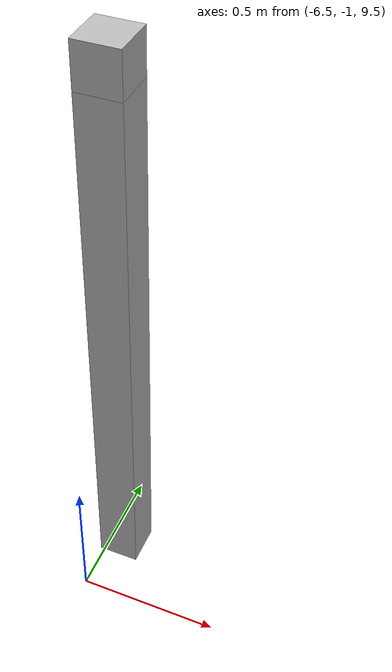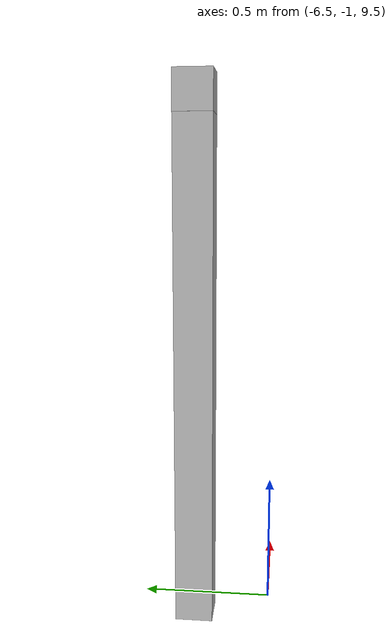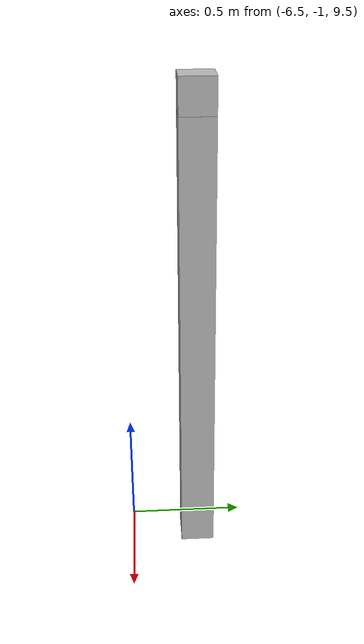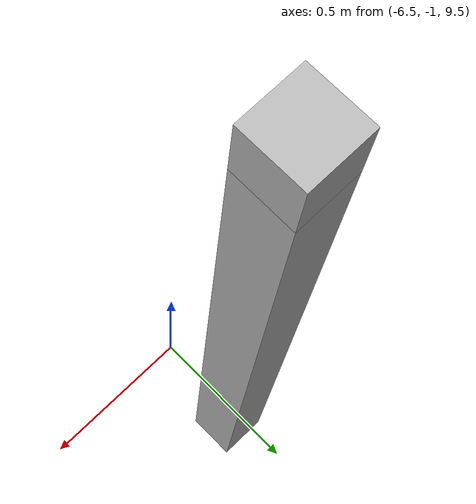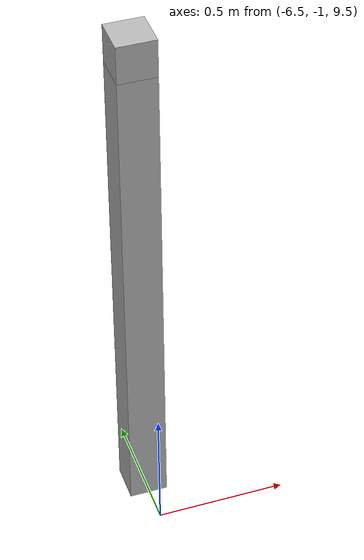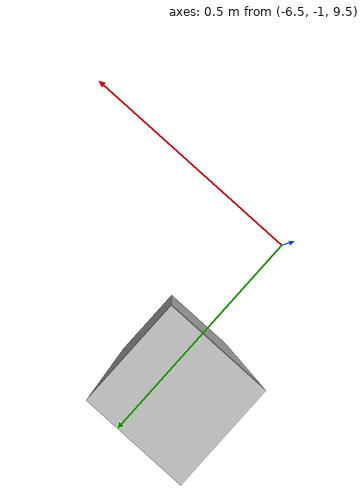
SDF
<sdf version="1.7">
 <world name="default">
  <model name="orthogonal_747_2.000.15_TS">
   <static>1</static>
   <link name="u_link_6_2_0">
    <inertial>
     <mass>1</mass>
     <inertia>
      <ixx>0.166667</ixx>
      <ixy>0</ixy>
      <ixz>0</ixz>
      <iyy>0.166667</iyy>
      <iyz>0</iyz>
      <izz>0.166667</izz>
     </inertia>
    </inertial>
    <pose>0 4.3 13.975 0 -0 0</pose>
    <visual name="visual_0">
     <laser_retro>5713</laser_retro>
     <geometry><box><size>0.15 1e-06 0.15</size></box></geometry>
     <material>
      <script><name>Gazebo/Grey</name><uri>file://media/materials/scripts/gazebo.material</uri></script>
      <shader type="pixel"><normal_map>__default__</normal_map></shader>
      <ambient>0.678 0.498 0.659 1</ambient>
      <diffuse>0.7 0.7 0.7 1</diffuse>
      <specular>0.01 0.01 0.01 1</specular>
      <emissive>0 0 0 1</emissive>
     </material>
     <pose>0 -0.075 0 0 -0 0</pose>
     <transparency>1</transparency>
    </visual>
    <visual name="visual_1">
     <laser_retro>5714</laser_retro>
     <geometry><box><size>0.15 1e-06 0.15</size></box></geometry>
     <material>
      <script><name>Gazebo/Grey</name><uri>file://media/materials/scripts/gazebo.material</uri></script>
      <shader type="pixel"><normal_map>__default__</normal_map></shader>
      <ambient>0.447 0.624 0.812 1</ambient>
      <diffuse>0.7 0.7 0.7 1</diffuse>
      <specular>0.01 0.01 0.01 1</specular>
      <emissive>0 0 0 1</emissive>
     </material>
     <pose>0 0.075 0 0 -0 0</pose>
     <transparency>1</transparency>
    </visual>
    <visual name="visual_2">
     <laser_retro>5715</laser_retro>
     <geometry><box><size>0.15 0.15 1e-06</size></box></geometry>
     <material>
      <script><name>Gazebo/Grey</name><uri>file://media/materials/scripts/gazebo.material</uri></script>
      <shader type="pixel"><normal_map>__default__</normal_map></shader>
      <ambient>0.988 0.686 0.243 1</ambient>
      <diffuse>0.7 0.7 0.7 1</diffuse>
      <specular>0.01 0.01 0.01 1</specular>
      <emissive>0 0 0 1</emissive>
     </material>
     <pose>0 0 -0.075 0 -0 0</pose>
     <transparency>1</transparency>
    </visual>
    <visual name="visual_3">
     <laser_retro>5716</laser_retro>
     <geometry><box><size>1e-06 0.15 0.15</size></box></geometry>
     <material>
      <script><name>Gazebo/Grey</name><uri>file://media/materials/scripts/gazebo.material</uri></script>
      <shader type="pixel"><normal_map>__default__</normal_map></shader>
      <ambient>0.988 0.914 0.31 1</ambient>
      <diffuse>0.7 0.7 0.7 1</diffuse>
      <specular>0.01 0.01 0.01 1</specular>
      <emissive>0 0 0 1</emissive>
     </material>
     <pose>0.075 0 0 0 -0 0</pose>
     <transparency>1</transparency>
    </visual>
    <visual name="visual_4">
     <laser_retro>5717</laser_retro>
     <geometry><box><size>0.15 0.15 1e-06</size></box></geometry>
     <material>
      <script><name>Gazebo/Grey</name><uri>file://media/materials/scripts/gazebo.material</uri></script>
      <shader type="pixel"><normal_map>__default__</normal_map></shader>
      <ambient>0.937 0.161 0.161 1</ambient>
      <diffuse>0.7 0.7 0.7 1</diffuse>
      <specular>0.01 0.01 0.01 1</specular>
      <emissive>0 0 0 1</emissive>
     </material>
     <pose>0 0 0.075 0 -0 0</pose>
     <transparency>1</transparency>
    </visual>
    <visual name="visual_5">
     <laser_retro>5718</laser_retro>
     <geometry><box><size>1e-06 0.15 0.15</size></box></geometry>
     <material>
      <script><name>Gazebo/Grey</name><uri>file://media/materials/scripts/gazebo.material</uri></script>
      <shader type="pixel"><normal_map>__default__</normal_map></shader>
      <ambient>0.541 0.886 0.204 1</ambient>
      <diffuse>0.7 0.7 0.7 1</diffuse>
      <specular>0.01 0.01 0.01 1</specular>
      <emissive>0 0 0 1</emissive>
     </material>
     <pose>-0.075 0 0 0 -0 0</pose>
     <transparency>1</transparency>
    </visual>
    <visual name="visual_texture">
     <geometry><box><size>0.149985 0.149985 0.149985</size></box></geometry>
     <material>
      <script>
       <uri>model://BASE_MODELS/simple_block_v2_textured/materials/scripts</uri>
       <uri>model://BASE_MODELS/simple_block_v2_textured/materials/textures</uri>
       <name>metal</name>
      </script>
     </material>
     <laser_retro>5719</laser_retro>
    </visual>
    <collision name="collision">
     <geometry><box><size>0.15 0.15 0.15</size></box></geometry>
     <surface>
      <friction>
       <ode><mu>1</mu><mu2>1</mu2><fdir1>0 0 0</fdir1><slip1>0</slip1><slip2>0</slip2></ode>
       <torsional>
        <coefficient>1</coefficient>
        <patch_radius>0</patch_radius>
        <surface_radius>0</surface_radius>
        <use_patch_radius>1</use_patch_radius>
        <ode><slip>0</slip></ode>
       </torsional>
      </friction>
      <bounce><restitution_coefficient>0</restitution_coefficient><threshold>1e+06</threshold></bounce>
      <contact>
       <collide_without_contact>0</collide_without_contact>
       <collide_without_contact_bitmask>1</collide_without_contact_bitmask>
       <collide_bitmask>1</collide_bitmask>
       <ode>
        <soft_cfm>0</soft_cfm>
        <soft_erp>0.2</soft_erp>
        <kp>1e+13</kp>
        <kd>1</kd>
        <max_vel>0.01</max_vel>
        <min_depth>0</min_depth>
       </ode>
       <bullet>
        <split_impulse>1</split_impulse>
        <split_impulse_penetration_threshold>-0.01</split_impulse_penetration_threshold>
        <soft_cfm>0</soft_cfm>
        <soft_erp>0.2</soft_erp>
        <kp>1e+13</kp>
        <kd>1</kd>
       </bullet>
      </contact>
     </surface>
    </collision>
   </link>
   <link name="z_link_6_2_0">
    <inertial>
     <mass>1</mass>
     <inertia>
      <ixx>0.166667</ixx>
      <ixy>0</ixy>
      <ixz>0</ixz>
      <iyy>0.166667</iyy>
      <iyz>0</iyz>
      <izz>0.166667</izz>
     </inertia>
    </inertial>
    <pose>0 4.3 12.9 0 -0 0</pose>
    <visual name="visual_0">
     <laser_retro>5720</laser_retro>
     <geometry><box><size>0.15 1e-06 2</size></box></geometry>
     <material>
      <script><name>Gazebo/Grey</name><uri>file://media/materials/scripts/gazebo.material</uri></script>
      <shader type="pixel"><normal_map>__default__</normal_map></shader>
      <ambient>0.678 0.498 0.659 1</ambient>
      <diffuse>0.7 0.7 0.7 1</diffuse>
      <specular>0.01 0.01 0.01 1</specular>
      <emissive>0 0 0 1</emissive>
     </material>
     <pose>0 -0.075 0 0 -0 0</pose>
     <transparency>1</transparency>
    </visual>
    <visual name="visual_1">
     <laser_retro>5721</laser_retro>
     <geometry><box><size>0.15 1e-06 2</size></box></geometry>
     <material>
      <script><name>Gazebo/Grey</name><uri>file://media/materials/scripts/gazebo.material</uri></script>
      <shader type="pixel"><normal_map>__default__</normal_map></shader>
      <ambient>0.447 0.624 0.812 1</ambient>
      <diffuse>0.7 0.7 0.7 1</diffuse>
      <specular>0.01 0.01 0.01 1</specular>
      <emissive>0 0 0 1</emissive>
     </material>
     <pose>0 0.075 0 0 -0 0</pose>
     <transparency>1</transparency>
    </visual>
    <visual name="visual_2">
     <laser_retro>5722</laser_retro>
     <geometry><box><size>0.15 0.15 1e-06</size></box></geometry>
     <material>
      <script><name>Gazebo/Grey</name><uri>file://media/materials/scripts/gazebo.material</uri></script>
      <shader type="pixel"><normal_map>__default__</normal_map></shader>
      <ambient>0.988 0.686 0.243 1</ambient>
      <diffuse>0.7 0.7 0.7 1</diffuse>
      <specular>0.01 0.01 0.01 1</specular>
      <emissive>0 0 0 1</emissive>
     </material>
     <pose>0 0 -1 0 -0 0</pose>
     <transparency>1</transparency>
    </visual>
    <visual name="visual_3">
     <laser_retro>5723</laser_retro>
     <geometry><box><size>1e-06 0.15 2</size></box></geometry>
     <material>
      <script><name>Gazebo/Grey</name><uri>file://media/materials/scripts/gazebo.material</uri></script>
      <shader type="pixel"><normal_map>__default__</normal_map></shader>
      <ambient>0.988 0.914 0.31 1</ambient>
      <diffuse>0.7 0.7 0.7 1</diffuse>
      <specular>0.01 0.01 0.01 1</specular>
      <emissive>0 0 0 1</emissive>
     </material>
     <pose>0.075 0 0 0 -0 0</pose>
     <transparency>1</transparency>
    </visual>
    <visual name="visual_4">
     <laser_retro>5724</laser_retro>
     <geometry><box><size>0.15 0.15 1e-06</size></box></geometry>
     <material>
      <script><name>Gazebo/Grey</name><uri>file://media/materials/scripts/gazebo.material</uri></script>
      <shader type="pixel"><normal_map>__default__</normal_map></shader>
      <ambient>0.937 0.161 0.161 1</ambient>
      <diffuse>0.7 0.7 0.7 1</diffuse>
      <specular>0.01 0.01 0.01 1</specular>
      <emissive>0 0 0 1</emissive>
     </material>
     <pose>0 0 1 0 -0 0</pose>
     <transparency>1</transparency>
    </visual>
    <visual name="visual_5">
     <laser_retro>5725</laser_retro>
     <geometry><box><size>1e-06 0.15 2</size></box></geometry>
     <material>
      <script><name>Gazebo/Grey</name><uri>file://media/materials/scripts/gazebo.material</uri></script>
      <shader type="pixel"><normal_map>__default__</normal_map></shader>
      <ambient>0.541 0.886 0.204 1</ambient>
      <diffuse>0.7 0.7 0.7 1</diffuse>
      <specular>0.01 0.01 0.01 1</specular>
      <emissive>0 0 0 1</emissive>
     </material>
     <pose>-0.075 0 0 0 -0 0</pose>
     <transparency>1</transparency>
    </visual>
    <visual name="visual_texture">
     <geometry><box><size>0.149985 0.149985 1.9998</size></box></geometry>
     <material>
      <script>
       <uri>model://BASE_MODELS/simple_block_v2_textured/materials/scripts</uri>
       <uri>model://BASE_MODELS/simple_block_v2_textured/materials/textures</uri>
       <name>metal</name>
      </script>
     </material>
     <laser_retro>5726</laser_retro>
    </visual>
    <collision name="collision">
     <geometry><box><size>0.15 0.15 2</size></box></geometry>
     <surface>
      <friction>
       <ode><mu>1</mu><mu2>1</mu2><fdir1>0 0 0</fdir1><slip1>0</slip1><slip2>0</slip2></ode>
       <torsional>
        <coefficient>1</coefficient>
        <patch_radius>0</patch_radius>
        <surface_radius>0</surface_radius>
        <use_patch_radius>1</use_patch_radius>
        <ode><slip>0</slip></ode>
       </torsional>
      </friction>
      <bounce><restitution_coefficient>0</restitution_coefficient><threshold>1e+06</threshold></bounce>
      <contact>
       <collide_without_contact>0</collide_without_contact>
       <collide_without_contact_bitmask>1</collide_without_contact_bitmask>
       <collide_bitmask>1</collide_bitmask>
       <ode>
        <soft_cfm>0</soft_cfm>
        <soft_erp>0.2</soft_erp>
        <kp>1e+13</kp>
        <kd>1</kd>
        <max_vel>0.01</max_vel>
        <min_depth>0</min_depth>
       </ode>
       <bullet>
        <split_impulse>1</split_impulse>
        <split_impulse_penetration_threshold>-0.01</split_impulse_penetration_threshold>
        <soft_cfm>0</soft_cfm>
        <soft_erp>0.2</soft_erp>
        <kp>1e+13</kp>
        <kd>1</kd>
       </bullet>
      </contact>
     </surface>
    </collision>
   </link>
   <pose>-6.47624 -5 -2.5 0 -0 0</pose>
  </model>
 </world>
</sdf>
